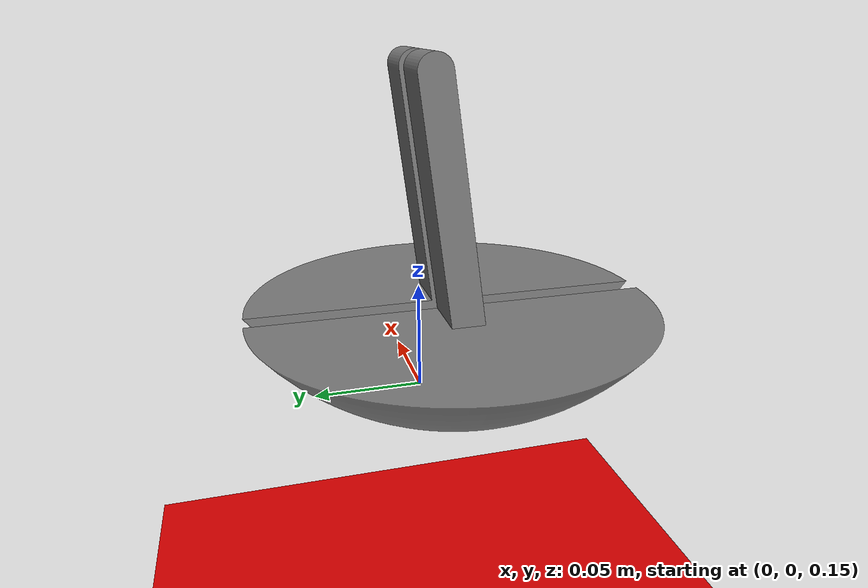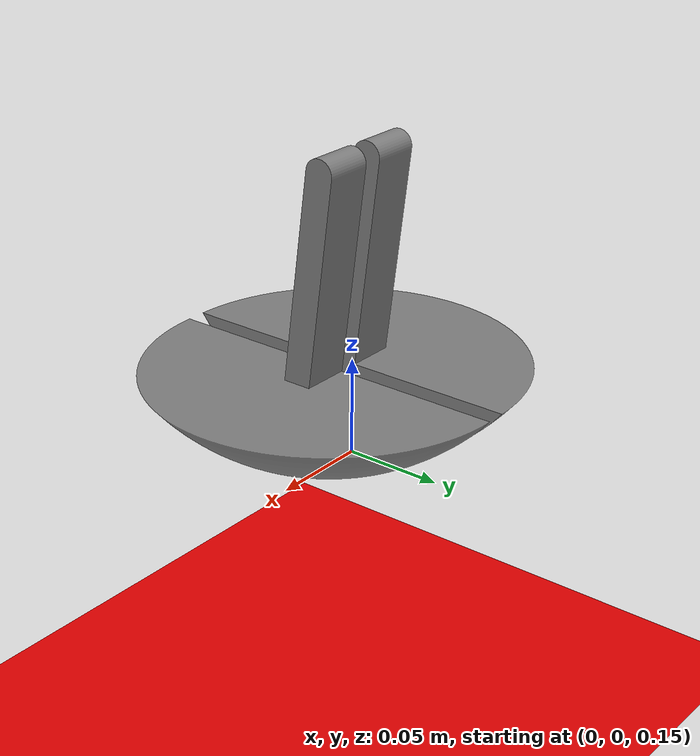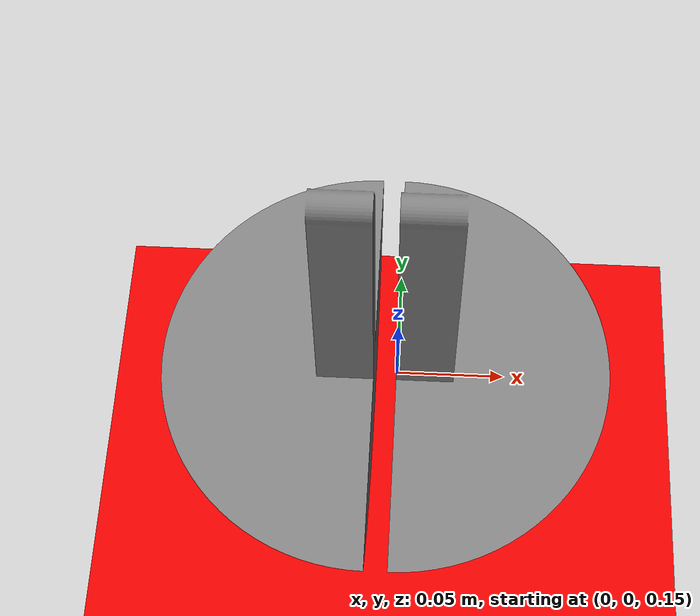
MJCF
<mujoco>

	<option gravity="0 0 -9.81"/>
	<option integrator="RK4"/>

	<asset>
		<mesh name="r_leg" file = "base_link.STL"/>
		<mesh name="l_leg" file = "Empty_Link.STL"/>
	</asset>

	<worldbody>
        <light diffuse=".5 .5 .5" pos="0 0 3" dir="0 0 -1"/>
		<geom type="plane" size="1 1 0.1" rgba=".9 0 0 1" friction="1 10 1" margin="0.001"/>

		<body pos="0 0 .3" euler="90 0 0">
			<joint type="free"/>
			<geom type="mesh" name="r_leg" mesh="r_leg" mass="0.4" friction="1 10 1" margin="0.001"/>

			<body pos="-0.01 0 0" euler="0 0 0">""
				<joint name="hip_joint" type="hinge" axis="1 0 0" limited="false"/>
				<geom type="mesh" name="l_leg" mesh="l_leg" mass="0.4" friction="1 10 1" margin="0.001"/>
			</body>
		</body>

	</worldbody>

	<actuator>
		<position joint="hip_joint" kp="1"/>
	</actuator>

</mujoco>
